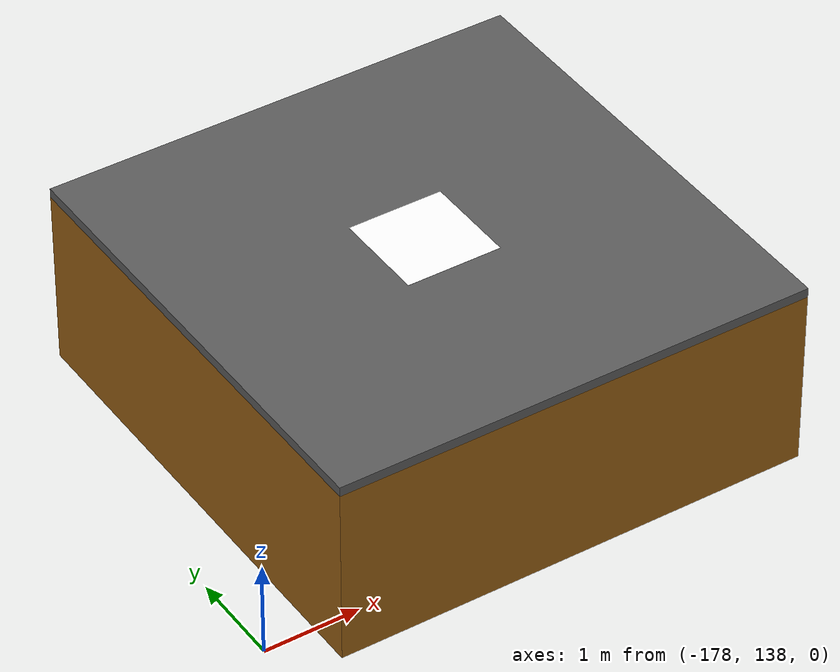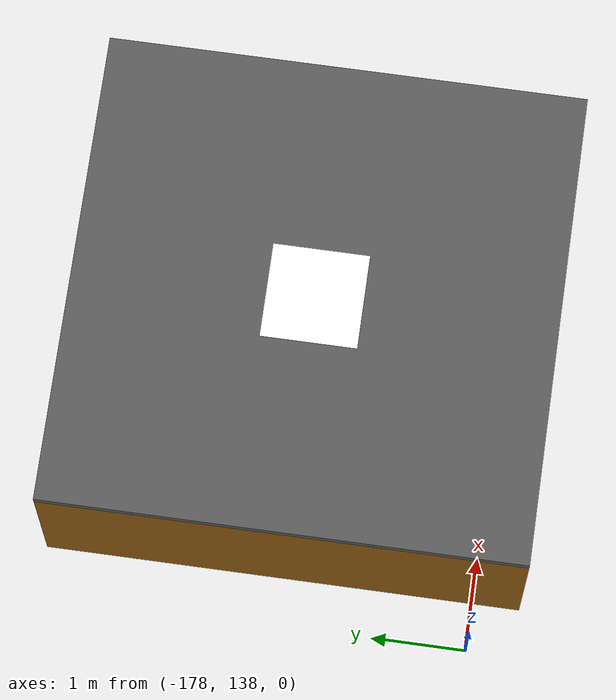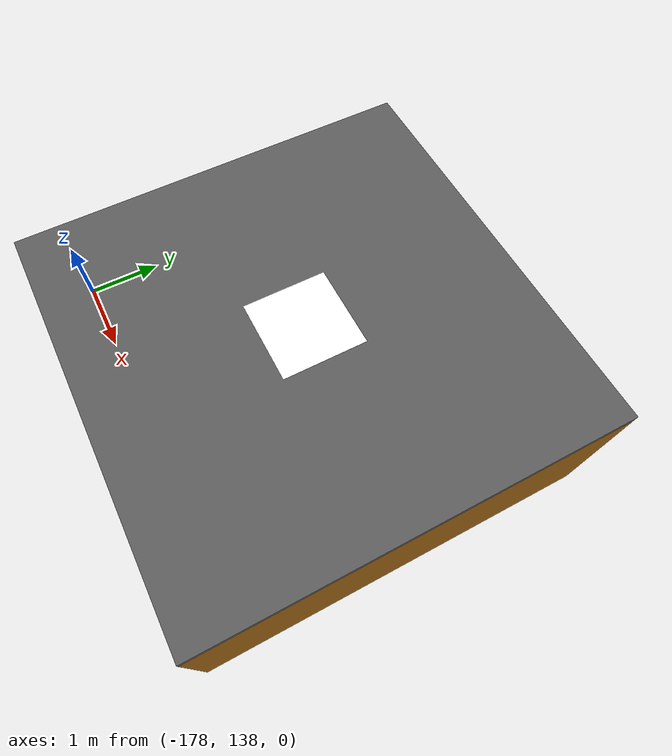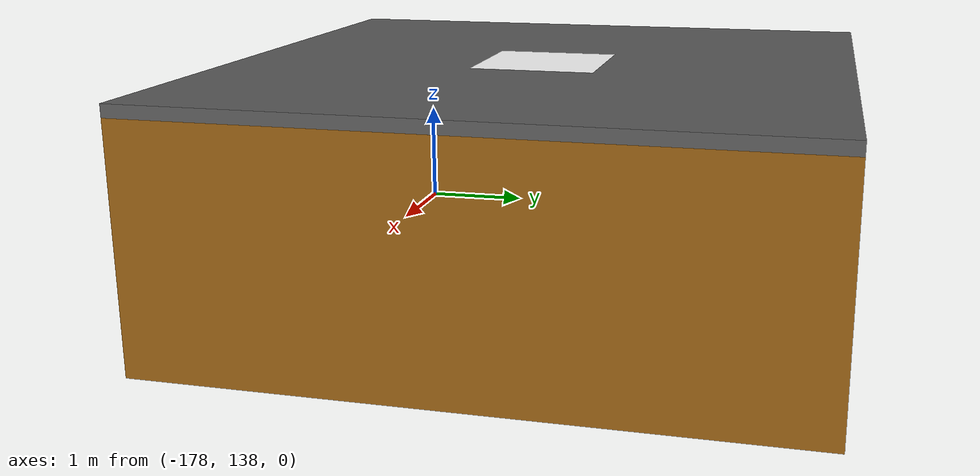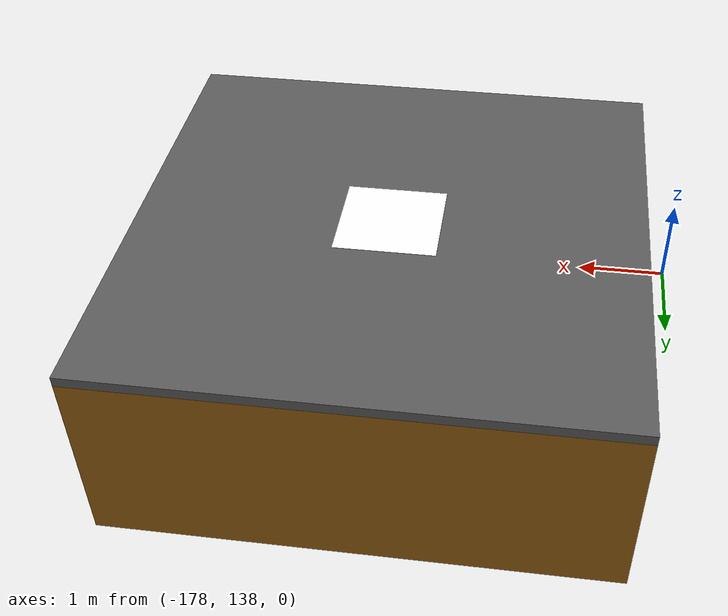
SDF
<sdf version="1.9">
 <world name="applepark_city">
  <magnetic_field>6.0e-6 2.3e-5 -4.2e-5</magnetic_field>
  <atmosphere type="adiabatic"/>
  <plugin filename="gz-sim-physics-system" name="gz::sim::systems::Physics"/>
  <plugin filename="gz-sim-user-commands-system" name="gz::sim::systems::UserCommands"/>
  <plugin filename="gz-sim-scene-broadcaster-system" name="gz::sim::systems::SceneBroadcaster"/>
  <plugin filename="gz-sim-contact-system" name="gz::sim::systems::Contact"/>
  <plugin filename="gz-sim-sensors-system" name="gz::sim::systems::Sensors">
   <render_engine>ogre2</render_engine>
  </plugin>
  <plugin filename="gz-sim-imu-system" name="gz::sim::systems::Imu"/>
  <plugin filename="gz-sim-air-pressure-system" name="gz::sim::systems::AirPressure"/>
  <plugin filename="gz-sim-magnetometer-system" name="gz::sim::systems::Magnetometer"/>
  <plugin filename="gz-sim-navsat-system" name="gz::sim::systems::NavSat"/>
  <light type="directional" name="sun">
   <pose>0 -7000 7000 0 0 0</pose>
   <diffuse>0.9 0.88 0.82 1</diffuse>
   <specular>0 0 0 1</specular>
   <direction>0.0 0.6 -0.6</direction>
  </light>
  <scene>
   <ambient>0.45 0.48 0.55 1</ambient>
   <grid>false</grid>
   <origin_visual>false</origin_visual>
   <sky><time>10</time><sunrise>6</sunrise><sunset>20</sunset><clouds><speed>12</speed></clouds></sky>
  </scene>
  <physics name="2ms" type="ignored">
   <max_step_size>0.002</max_step_size>
   <real_time_factor>1</real_time_factor>
   <real_time_update_rate>500</real_time_update_rate>
  </physics>
  <gravity>0 0 -9.8066</gravity>
  <spherical_coordinates>
   <surface_model>EARTH_WGS84</surface_model>
   <latitude_deg>37.32977431415926</latitude_deg>
   <longitude_deg>-121.99860517699835</longitude_deg>
   <elevation>50.600000000000364</elevation>
  </spherical_coordinates>
  <model name="applepark_buildings">
   <static>true</static>
   <link name="buildings">
    <visual name="buildings_visual">
     <geometry><mesh><uri>mesh/buildings.dae</uri><scale>1 1 1</scale></mesh></geometry>
     <material>
      <ambient>0.75 0.75 0.75 1</ambient>
      <diffuse>0.85 0.85 0.85 1</diffuse>
      <specular>0.05 0.05 0.05 1</specular>
      <emissive>0 0 0 1</emissive>
     </material>
    </visual>
    <collision name="buildings_collision">
     <geometry><mesh><uri>mesh/buildings.dae</uri><scale>1 1 1</scale></mesh></geometry>
    </collision>
   </link>
  </model>
  <frame name="drone_spawn"><pose>-120 115 0 0 0 0</pose></frame>
  <include>
   <uri>model://moving_platform_track</uri>
   <name>flat_platform</name>
   <pose>-175 140 0 0 0 0</pose>
  </include>
 </world>
</sdf>

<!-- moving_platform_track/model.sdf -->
<sdf version="1.9">
  <model name="flat_platform">
    <link name="platform_link">
      <visual name="body_visual">
        <pose>0 0 -1 0 0 0</pose>
        <geometry><box><size>5 5 1.9</size></box></geometry>
        <material>
          <ambient>0.55 0.32 0.05 1</ambient>
          <diffuse>0.60 0.38 0.08 1</diffuse>
          <specular>0.20 0.20 0.20 1</specular>
        </material>
      </visual>
      <collision name="body_collision">
        <pose>0 0 -1 0 0 0</pose>
        <geometry><box><size>5 5 1.9</size></box></geometry>
        <surface>
          <friction><ode><mu>0.8</mu><mu2>0.8</mu2></ode></friction>
          <contact><ode><kp>100000</kp><kd>10</kd><max_vel>0.1</max_vel></ode></contact>
        </surface>
      </collision>

      <visual name="platform_visual">
        <geometry><box><size>5 5 0.1</size></box></geometry>
        <material>
          <ambient>0.30 0.30 0.30 1</ambient>
          <diffuse>0.36 0.36 0.36 1</diffuse>
          <specular>0.10 0.10 0.10 1</specular>
        </material>
      </visual>
      <collision name="platform_collision">
        <geometry><box><size>5 5 0.1</size></box></geometry>
      </collision>
      <visual name="aruco_visual">
        <pose>0 0 0.051 0 0 0</pose>
        <geometry><plane><normal>0 0 1</normal><size>1 1</size></plane></geometry>
        <material>
          <ambient>1 1 1 1</ambient><diffuse>1 1 1 1</diffuse>
          <specular>0 0 0 1</specular>
          <pbr><metal>
            <albedo_map>model://aruco_marker_0/materials/textures/aruco_0.png</albedo_map>
            <metalness>0.0</metalness><roughness>1.0</roughness>
          </metal></pbr>
        </material>
      </visual>

      <!-- seo keeps the link origin 2 m above the body bottom convention. -->
      <pose>0 0 2 0 0 0</pose>
      <inertial>
        <mass>10000</mass>
        <inertia>
          <ixx>10000</ixx><iyy>10000</iyy><izz>10000</izz>
          <ixy>0</ixy><ixz>0</ixz><iyz>0</iyz>
        </inertia>
      </inertial>
      <sensor name="navsat_sensor" type="navsat">
        <always_on>1</always_on><update_rate>30</update_rate>
      </sensor>
    </link>
    <plugin filename="gz-sim-velocity-control-system"
            name="gz::sim::systems::VelocityControl">
      <topic>/model/flat_platform/cmd_vel</topic>
    </plugin>
  </model>
</sdf>
